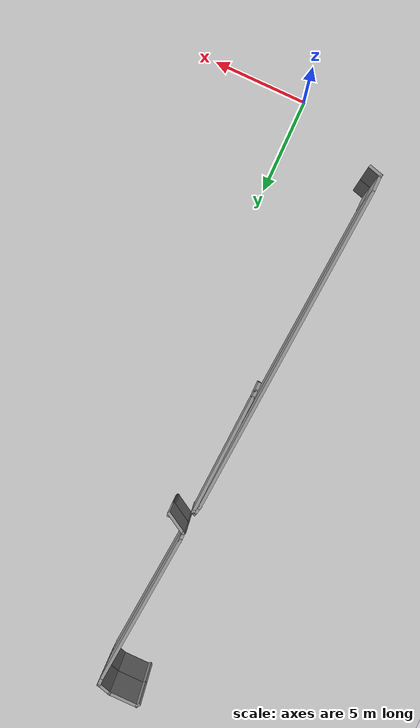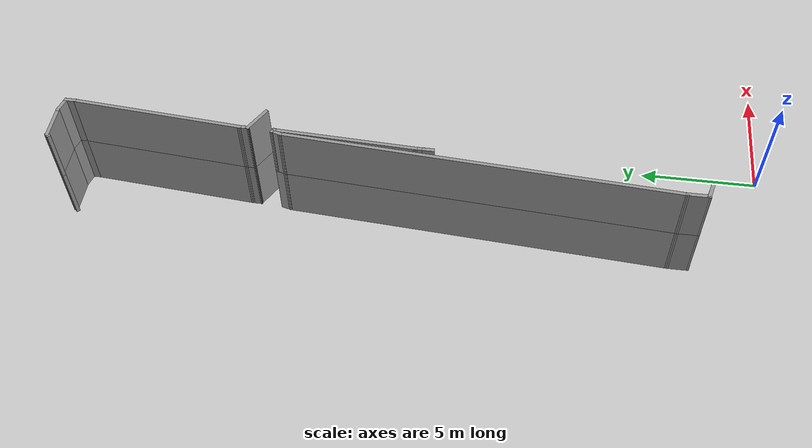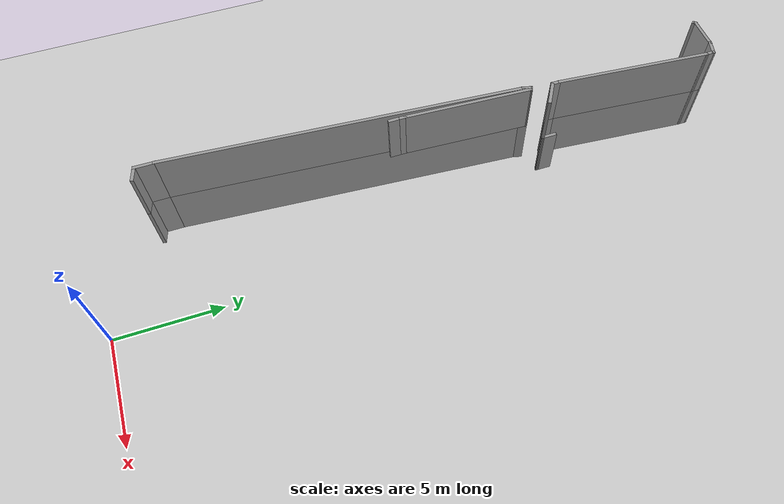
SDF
<sdf version="1.7">
 <world name="default">
  <model name="ground_plane">
   <static>1</static>
   <link name="link">
    <collision name="collision">
     <geometry><plane><normal>0 0 1</normal><size>100 100</size></plane></geometry>
     <surface>
      <contact><collide_bitmask>65535</collide_bitmask></contact>
      <friction><ode><mu>100</mu><mu2>50</mu2></ode></friction>
     </surface>
    </collision>
    <visual name="visual">
     <cast_shadows>0</cast_shadows>
     <geometry><plane><normal>0 0 1</normal><size>100 100</size></plane></geometry>
     <material>
      <script><uri>file://media/materials/scripts/gazebo.material</uri><name>Gazebo/Grey</name></script>
     </material>
    </visual>
   </link>
  </model>
  <model name="EnvDC01">
   <link name="Wall_112">
    <pose>-11.1086 9.30614 0 0 -0 2.87979</pose>
    <visual name="Wall_112_Visual">
     <pose>0 0 1.25 0 -0 0</pose>
     <geometry><box><size>0.75 0.15 2.5</size></box></geometry>
     <material>
      <script><uri>file://media/materials/scripts/gazebo.material</uri><name>Gazebo/Grey</name></script>
      <ambient>1 1 1 1</ambient>
      <shader type="pixel"/>
     </material>
     <meta><layer>0</layer></meta>
    </visual>
    <collision name="Wall_112_Collision">
     <pose>0 0 1.25 0 -0 0</pose>
     <geometry><box><size>0.75 0.15 2.5</size></box></geometry>
     <surface>
      <friction>
       <ode><mu>1</mu><mu2>1</mu2><fdir1>0 0 0</fdir1><slip1>0</slip1><slip2>0</slip2></ode>
       <torsional>
        <coefficient>1</coefficient>
        <patch_radius>0</patch_radius>
        <surface_radius>0</surface_radius>
        <use_patch_radius>1</use_patch_radius>
        <ode><slip>0</slip></ode>
       </torsional>
      </friction>
      <bounce><restitution_coefficient>0</restitution_coefficient><threshold>1e+06</threshold></bounce>
      <contact>
       <collide_without_contact>0</collide_without_contact>
       <collide_without_contact_bitmask>1</collide_without_contact_bitmask>
       <collide_bitmask>1</collide_bitmask>
       <ode>
        <soft_cfm>0</soft_cfm>
        <soft_erp>0.2</soft_erp>
        <kp>1e+13</kp>
        <kd>1</kd>
        <max_vel>0.01</max_vel>
        <min_depth>0</min_depth>
       </ode>
       <bullet>
        <split_impulse>1</split_impulse>
        <split_impulse_penetration_threshold>-0.01</split_impulse_penetration_threshold>
        <soft_cfm>0</soft_cfm>
        <soft_erp>0.2</soft_erp>
        <kp>1e+13</kp>
        <kd>1</kd>
       </bullet>
      </contact>
     </surface>
    </collision>
   </link>
   <link name="Wall_114">
    <pose>-10.2177 26.6696 0 0 0 -1.8326</pose>
    <visual name="Wall_114_Visual">
     <pose>0 0 1.25 0 -0 0</pose>
     <geometry><box><size>0.5 0.15 2.5</size></box></geometry>
     <material>
      <script><uri>file://media/materials/scripts/gazebo.material</uri><name>Gazebo/Grey</name></script>
      <ambient>1 1 1 1</ambient>
      <shader type="pixel"/>
     </material>
     <meta><layer>0</layer></meta>
    </visual>
    <collision name="Wall_114_Collision">
     <pose>0 0 1.25 0 -0 0</pose>
     <geometry><box><size>0.5 0.15 2.5</size></box></geometry>
     <surface>
      <friction>
       <ode><mu>1</mu><mu2>1</mu2><fdir1>0 0 0</fdir1><slip1>0</slip1><slip2>0</slip2></ode>
       <torsional>
        <coefficient>1</coefficient>
        <patch_radius>0</patch_radius>
        <surface_radius>0</surface_radius>
        <use_patch_radius>1</use_patch_radius>
        <ode><slip>0</slip></ode>
       </torsional>
      </friction>
      <bounce><restitution_coefficient>0</restitution_coefficient><threshold>1e+06</threshold></bounce>
      <contact>
       <collide_without_contact>0</collide_without_contact>
       <collide_without_contact_bitmask>1</collide_without_contact_bitmask>
       <collide_bitmask>1</collide_bitmask>
       <ode>
        <soft_cfm>0</soft_cfm>
        <soft_erp>0.2</soft_erp>
        <kp>1e+13</kp>
        <kd>1</kd>
        <max_vel>0.01</max_vel>
        <min_depth>0</min_depth>
       </ode>
       <bullet>
        <split_impulse>1</split_impulse>
        <split_impulse_penetration_threshold>-0.01</split_impulse_penetration_threshold>
        <soft_cfm>0</soft_cfm>
        <soft_erp>0.2</soft_erp>
        <kp>1e+13</kp>
        <kd>1</kd>
       </bullet>
      </contact>
     </surface>
    </collision>
   </link>
   <link name="Wall_115">
    <pose>-10.8307 18.3672 0 0 0 -1.64048</pose>
    <visual name="Wall_115_Visual">
     <pose>0 0 1.25 0 -0 0</pose>
     <geometry><box><size>16.4563 0.15 2.5</size></box></geometry>
     <material>
      <script><uri>file://media/materials/scripts/gazebo.material</uri><name>Gazebo/Grey</name></script>
      <ambient>1 1 1 1</ambient>
      <shader type="pixel"/>
     </material>
     <meta><layer>0</layer></meta>
    </visual>
    <collision name="Wall_115_Collision">
     <pose>0 0 1.25 0 -0 0</pose>
     <geometry><box><size>16.4563 0.15 2.5</size></box></geometry>
     <surface>
      <friction>
       <ode><mu>1</mu><mu2>1</mu2><fdir1>0 0 0</fdir1><slip1>0</slip1><slip2>0</slip2></ode>
       <torsional>
        <coefficient>1</coefficient>
        <patch_radius>0</patch_radius>
        <surface_radius>0</surface_radius>
        <use_patch_radius>1</use_patch_radius>
        <ode><slip>0</slip></ode>
       </torsional>
      </friction>
      <bounce><restitution_coefficient>0</restitution_coefficient><threshold>1e+06</threshold></bounce>
      <contact>
       <collide_without_contact>0</collide_without_contact>
       <collide_without_contact_bitmask>1</collide_without_contact_bitmask>
       <collide_bitmask>1</collide_bitmask>
       <ode>
        <soft_cfm>0</soft_cfm>
        <soft_erp>0.2</soft_erp>
        <kp>1e+13</kp>
        <kd>1</kd>
        <max_vel>0.01</max_vel>
        <min_depth>0</min_depth>
       </ode>
       <bullet>
        <split_impulse>1</split_impulse>
        <split_impulse_penetration_threshold>-0.01</split_impulse_penetration_threshold>
        <soft_cfm>0</soft_cfm>
        <soft_erp>0.2</soft_erp>
        <kp>1e+13</kp>
        <kd>1</kd>
       </bullet>
      </contact>
     </surface>
    </collision>
   </link>
   <link name="Wall_116">
    <pose>-11.3984 9.80879 0 0 0 -1.5708</pose>
    <visual name="Wall_116_Visual">
     <pose>0 0 1.25 0 -0 0</pose>
     <geometry><box><size>1 0.15 2.5</size></box></geometry>
     <material>
      <script><uri>file://media/materials/scripts/gazebo.material</uri><name>Gazebo/Grey</name></script>
      <ambient>1 1 1 1</ambient>
      <shader type="pixel"/>
     </material>
     <meta><layer>0</layer></meta>
    </visual>
    <collision name="Wall_116_Collision">
     <pose>0 0 1.25 0 -0 0</pose>
     <geometry><box><size>1 0.15 2.5</size></box></geometry>
     <surface>
      <friction>
       <ode><mu>1</mu><mu2>1</mu2><fdir1>0 0 0</fdir1><slip1>0</slip1><slip2>0</slip2></ode>
       <torsional>
        <coefficient>1</coefficient>
        <patch_radius>0</patch_radius>
        <surface_radius>0</surface_radius>
        <use_patch_radius>1</use_patch_radius>
        <ode><slip>0</slip></ode>
       </torsional>
      </friction>
      <bounce><restitution_coefficient>0</restitution_coefficient><threshold>1e+06</threshold></bounce>
      <contact>
       <collide_without_contact>0</collide_without_contact>
       <collide_without_contact_bitmask>1</collide_without_contact_bitmask>
       <collide_bitmask>1</collide_bitmask>
       <ode>
        <soft_cfm>0</soft_cfm>
        <soft_erp>0.2</soft_erp>
        <kp>1e+13</kp>
        <kd>1</kd>
        <max_vel>0.01</max_vel>
        <min_depth>0</min_depth>
       </ode>
       <bullet>
        <split_impulse>1</split_impulse>
        <split_impulse_penetration_threshold>-0.01</split_impulse_penetration_threshold>
        <soft_cfm>0</soft_cfm>
        <soft_erp>0.2</soft_erp>
        <kp>1e+13</kp>
        <kd>1</kd>
       </bullet>
      </contact>
     </surface>
    </collision>
   </link>
   <link name="Wall_118">
    <pose>-10.0854 28.0428 0 0 -0 1.5708</pose>
    <visual name="Wall_118_Visual">
     <pose>0 0 1.25 0 -0 0</pose>
     <geometry><box><size>0.5 0.15 2.5</size></box></geometry>
     <material>
      <script><uri>file://media/materials/scripts/gazebo.material</uri><name>Gazebo/Grey</name></script>
      <ambient>1 1 1 1</ambient>
      <shader type="pixel"/>
     </material>
     <meta><layer>0</layer></meta>
    </visual>
    <collision name="Wall_118_Collision">
     <pose>0 0 1.25 0 -0 0</pose>
     <geometry><box><size>0.5 0.15 2.5</size></box></geometry>
     <surface>
      <friction>
       <ode><mu>1</mu><mu2>1</mu2><fdir1>0 0 0</fdir1><slip1>0</slip1><slip2>0</slip2></ode>
       <torsional>
        <coefficient>1</coefficient>
        <patch_radius>0</patch_radius>
        <surface_radius>0</surface_radius>
        <use_patch_radius>1</use_patch_radius>
        <ode><slip>0</slip></ode>
       </torsional>
      </friction>
      <bounce><restitution_coefficient>0</restitution_coefficient><threshold>1e+06</threshold></bounce>
      <contact>
       <collide_without_contact>0</collide_without_contact>
       <collide_without_contact_bitmask>1</collide_without_contact_bitmask>
       <collide_bitmask>1</collide_bitmask>
       <ode>
        <soft_cfm>0</soft_cfm>
        <soft_erp>0.2</soft_erp>
        <kp>1e+13</kp>
        <kd>1</kd>
        <max_vel>0.01</max_vel>
        <min_depth>0</min_depth>
       </ode>
       <bullet>
        <split_impulse>1</split_impulse>
        <split_impulse_penetration_threshold>-0.01</split_impulse_penetration_threshold>
        <soft_cfm>0</soft_cfm>
        <soft_erp>0.2</soft_erp>
        <kp>1e+13</kp>
        <kd>1</kd>
       </bullet>
      </contact>
     </surface>
    </collision>
   </link>
   <link name="Wall_119">
    <pose>-9.78492 31.7757 0 0 -0 1.48653</pose>
    <visual name="Wall_119_Visual">
     <pose>0 0 1.25 0 -0 0</pose>
     <geometry><box><size>7.29114 0.15 2.5</size></box></geometry>
     <material>
      <script><uri>file://media/materials/scripts/gazebo.material</uri><name>Gazebo/Grey</name></script>
      <ambient>1 1 1 1</ambient>
      <shader type="pixel"/>
     </material>
     <meta><layer>0</layer></meta>
    </visual>
    <collision name="Wall_119_Collision">
     <pose>0 0 1.25 0 -0 0</pose>
     <geometry><box><size>7.29114 0.15 2.5</size></box></geometry>
     <surface>
      <friction>
       <ode><mu>1</mu><mu2>1</mu2><fdir1>0 0 0</fdir1><slip1>0</slip1><slip2>0</slip2></ode>
       <torsional>
        <coefficient>1</coefficient>
        <patch_radius>0</patch_radius>
        <surface_radius>0</surface_radius>
        <use_patch_radius>1</use_patch_radius>
        <ode><slip>0</slip></ode>
       </torsional>
      </friction>
      <bounce><restitution_coefficient>0</restitution_coefficient><threshold>1e+06</threshold></bounce>
      <contact>
       <collide_without_contact>0</collide_without_contact>
       <collide_without_contact_bitmask>1</collide_without_contact_bitmask>
       <collide_bitmask>1</collide_bitmask>
       <ode>
        <soft_cfm>0</soft_cfm>
        <soft_erp>0.2</soft_erp>
        <kp>1e+13</kp>
        <kd>1</kd>
        <max_vel>0.01</max_vel>
        <min_depth>0</min_depth>
       </ode>
       <bullet>
        <split_impulse>1</split_impulse>
        <split_impulse_penetration_threshold>-0.01</split_impulse_penetration_threshold>
        <soft_cfm>0</soft_cfm>
        <soft_erp>0.2</soft_erp>
        <kp>1e+13</kp>
        <kd>1</kd>
       </bullet>
      </contact>
     </surface>
    </collision>
   </link>
   <link name="Wall_120">
    <pose>-9.4844 35.5086 0 0 -0 1.5708</pose>
    <visual name="Wall_120_Visual">
     <pose>0 0 1.25 0 -0 0</pose>
     <geometry><box><size>0.5 0.15 2.5</size></box></geometry>
     <material>
      <script><uri>file://media/materials/scripts/gazebo.material</uri><name>Gazebo/Grey</name></script>
      <ambient>1 1 1 1</ambient>
      <shader type="pixel"/>
     </material>
     <meta><layer>0</layer></meta>
    </visual>
    <collision name="Wall_120_Collision">
     <pose>0 0 1.25 0 -0 0</pose>
     <geometry><box><size>0.5 0.15 2.5</size></box></geometry>
     <surface>
      <friction>
       <ode><mu>1</mu><mu2>1</mu2><fdir1>0 0 0</fdir1><slip1>0</slip1><slip2>0</slip2></ode>
       <torsional>
        <coefficient>1</coefficient>
        <patch_radius>0</patch_radius>
        <surface_radius>0</surface_radius>
        <use_patch_radius>1</use_patch_radius>
        <ode><slip>0</slip></ode>
       </torsional>
      </friction>
      <bounce><restitution_coefficient>0</restitution_coefficient><threshold>1e+06</threshold></bounce>
      <contact>
       <collide_without_contact>0</collide_without_contact>
       <collide_without_contact_bitmask>1</collide_without_contact_bitmask>
       <collide_bitmask>1</collide_bitmask>
       <ode>
        <soft_cfm>0</soft_cfm>
        <soft_erp>0.2</soft_erp>
        <kp>1e+13</kp>
        <kd>1</kd>
        <max_vel>0.01</max_vel>
        <min_depth>0</min_depth>
       </ode>
       <bullet>
        <split_impulse>1</split_impulse>
        <split_impulse_penetration_threshold>-0.01</split_impulse_penetration_threshold>
        <soft_cfm>0</soft_cfm>
        <soft_erp>0.2</soft_erp>
        <kp>1e+13</kp>
        <kd>1</kd>
       </bullet>
      </contact>
     </surface>
    </collision>
   </link>
   <link name="Wall_122">
    <pose>-9.77418 35.7612 0 0 -0 2.87979</pose>
    <visual name="Wall_122_Visual">
     <pose>0 0 1.25 0 -0 0</pose>
     <geometry><box><size>0.75 0.15 2.5</size></box></geometry>
     <material>
      <script><uri>file://media/materials/scripts/gazebo.material</uri><name>Gazebo/Grey</name></script>
      <ambient>1 1 1 1</ambient>
      <shader type="pixel"/>
     </material>
     <meta><layer>0</layer></meta>
    </visual>
    <collision name="Wall_122_Collision">
     <pose>0 0 1.25 0 -0 0</pose>
     <geometry><box><size>0.75 0.15 2.5</size></box></geometry>
     <surface>
      <friction>
       <ode><mu>1</mu><mu2>1</mu2><fdir1>0 0 0</fdir1><slip1>0</slip1><slip2>0</slip2></ode>
       <torsional>
        <coefficient>1</coefficient>
        <patch_radius>0</patch_radius>
        <surface_radius>0</surface_radius>
        <use_patch_radius>1</use_patch_radius>
        <ode><slip>0</slip></ode>
       </torsional>
      </friction>
      <bounce><restitution_coefficient>0</restitution_coefficient><threshold>1e+06</threshold></bounce>
      <contact>
       <collide_without_contact>0</collide_without_contact>
       <collide_without_contact_bitmask>1</collide_without_contact_bitmask>
       <collide_bitmask>1</collide_bitmask>
       <ode>
        <soft_cfm>0</soft_cfm>
        <soft_erp>0.2</soft_erp>
        <kp>1e+13</kp>
        <kd>1</kd>
        <max_vel>0.01</max_vel>
        <min_depth>0</min_depth>
       </ode>
       <bullet>
        <split_impulse>1</split_impulse>
        <split_impulse_penetration_threshold>-0.01</split_impulse_penetration_threshold>
        <soft_cfm>0</soft_cfm>
        <soft_erp>0.2</soft_erp>
        <kp>1e+13</kp>
        <kd>1</kd>
       </bullet>
      </contact>
     </surface>
    </collision>
   </link>
   <link name="Wall_123">
    <pose>-10.739 35.8389 0 0 -0 3.14159</pose>
    <visual name="Wall_123_Visual">
     <pose>0 0 1.25 0 -0 0</pose>
     <geometry><box><size>1.5 0.15 2.5</size></box></geometry>
     <material>
      <script><uri>file://media/materials/scripts/gazebo.material</uri><name>Gazebo/Grey</name></script>
      <ambient>1 1 1 1</ambient>
      <shader type="pixel"/>
     </material>
     <meta><layer>0</layer></meta>
    </visual>
    <collision name="Wall_123_Collision">
     <pose>0 0 1.25 0 -0 0</pose>
     <geometry><box><size>1.5 0.15 2.5</size></box></geometry>
     <surface>
      <friction>
       <ode><mu>1</mu><mu2>1</mu2><fdir1>0 0 0</fdir1><slip1>0</slip1><slip2>0</slip2></ode>
       <torsional>
        <coefficient>1</coefficient>
        <patch_radius>0</patch_radius>
        <surface_radius>0</surface_radius>
        <use_patch_radius>1</use_patch_radius>
        <ode><slip>0</slip></ode>
       </torsional>
      </friction>
      <bounce><restitution_coefficient>0</restitution_coefficient><threshold>1e+06</threshold></bounce>
      <contact>
       <collide_without_contact>0</collide_without_contact>
       <collide_without_contact_bitmask>1</collide_without_contact_bitmask>
       <collide_bitmask>1</collide_bitmask>
       <ode>
        <soft_cfm>0</soft_cfm>
        <soft_erp>0.2</soft_erp>
        <kp>1e+13</kp>
        <kd>1</kd>
        <max_vel>0.01</max_vel>
        <min_depth>0</min_depth>
       </ode>
       <bullet>
        <split_impulse>1</split_impulse>
        <split_impulse_penetration_threshold>-0.01</split_impulse_penetration_threshold>
        <soft_cfm>0</soft_cfm>
        <soft_erp>0.2</soft_erp>
        <kp>1e+13</kp>
        <kd>1</kd>
       </bullet>
      </contact>
     </surface>
    </collision>
   </link>
   <link name="Wall_124">
    <pose>-11.4493 35.8035 0 0 0 -2.35619</pose>
    <visual name="Wall_124_Visual">
     <pose>0 0 1.25 0 -0 0</pose>
     <geometry><box><size>0.25 0.15 2.5</size></box></geometry>
     <material>
      <script><uri>file://media/materials/scripts/gazebo.material</uri><name>Gazebo/Grey</name></script>
      <ambient>1 1 1 1</ambient>
      <shader type="pixel"/>
     </material>
     <meta><layer>0</layer></meta>
    </visual>
    <collision name="Wall_124_Collision">
     <pose>0 0 1.25 0 -0 0</pose>
     <geometry><box><size>0.25 0.15 2.5</size></box></geometry>
     <surface>
      <friction>
       <ode><mu>1</mu><mu2>1</mu2><fdir1>0 0 0</fdir1><slip1>0</slip1><slip2>0</slip2></ode>
       <torsional>
        <coefficient>1</coefficient>
        <patch_radius>0</patch_radius>
        <surface_radius>0</surface_radius>
        <use_patch_radius>1</use_patch_radius>
        <ode><slip>0</slip></ode>
       </torsional>
      </friction>
      <bounce><restitution_coefficient>0</restitution_coefficient><threshold>1e+06</threshold></bounce>
      <contact>
       <collide_without_contact>0</collide_without_contact>
       <collide_without_contact_bitmask>1</collide_without_contact_bitmask>
       <collide_bitmask>1</collide_bitmask>
       <ode>
        <soft_cfm>0</soft_cfm>
        <soft_erp>0.2</soft_erp>
        <kp>1e+13</kp>
        <kd>1</kd>
        <max_vel>0.01</max_vel>
        <min_depth>0</min_depth>
       </ode>
       <bullet>
        <split_impulse>1</split_impulse>
        <split_impulse_penetration_threshold>-0.01</split_impulse_penetration_threshold>
        <soft_cfm>0</soft_cfm>
        <soft_erp>0.2</soft_erp>
        <kp>1e+13</kp>
        <kd>1</kd>
       </bullet>
      </contact>
     </surface>
    </collision>
   </link>
   <link name="Wall_254">
    <pose>-9.60913 27.5928 0 0 0 -0.523599</pose>
    <visual name="Wall_254_Visual">
     <pose>0 0 1.25 0 -0 0</pose>
     <geometry><box><size>1.25 0.15 2.5</size></box></geometry>
     <material>
      <script><uri>file://media/materials/scripts/gazebo.material</uri><name>Gazebo/Grey</name></script>
      <ambient>1 1 1 1</ambient>
      <shader type="pixel"/>
     </material>
     <meta><layer>0</layer></meta>
    </visual>
    <collision name="Wall_254_Collision">
     <pose>0 0 1.25 0 -0 0</pose>
     <geometry><box><size>1.25 0.15 2.5</size></box></geometry>
     <surface>
      <friction>
       <ode><mu>1</mu><mu2>1</mu2><fdir1>0 0 0</fdir1><slip1>0</slip1><slip2>0</slip2></ode>
       <torsional>
        <coefficient>1</coefficient>
        <patch_radius>0</patch_radius>
        <surface_radius>0</surface_radius>
        <use_patch_radius>1</use_patch_radius>
        <ode><slip>0</slip></ode>
       </torsional>
      </friction>
      <bounce><restitution_coefficient>0</restitution_coefficient><threshold>1e+06</threshold></bounce>
      <contact>
       <collide_without_contact>0</collide_without_contact>
       <collide_without_contact_bitmask>1</collide_without_contact_bitmask>
       <collide_bitmask>1</collide_bitmask>
       <ode>
        <soft_cfm>0</soft_cfm>
        <soft_erp>0.2</soft_erp>
        <kp>1e+13</kp>
        <kd>1</kd>
        <max_vel>0.01</max_vel>
        <min_depth>0</min_depth>
       </ode>
       <bullet>
        <split_impulse>1</split_impulse>
        <split_impulse_penetration_threshold>-0.01</split_impulse_penetration_threshold>
        <soft_cfm>0</soft_cfm>
        <soft_erp>0.2</soft_erp>
        <kp>1e+13</kp>
        <kd>1</kd>
       </bullet>
      </contact>
     </surface>
    </collision>
   </link>
   <link name="Wall_255">
    <pose>-9.13281 27.6178 0 0 -0 1.5708</pose>
    <visual name="Wall_255_Visual">
     <pose>0 0 1.25 0 -0 0</pose>
     <geometry><box><size>0.75 0.15 2.5</size></box></geometry>
     <material>
      <script><uri>file://media/materials/scripts/gazebo.material</uri><name>Gazebo/Grey</name></script>
      <ambient>1 1 1 1</ambient>
      <shader type="pixel"/>
     </material>
     <meta><layer>0</layer></meta>
    </visual>
    <collision name="Wall_255_Collision">
     <pose>0 0 1.25 0 -0 0</pose>
     <geometry><box><size>0.75 0.15 2.5</size></box></geometry>
     <surface>
      <friction>
       <ode><mu>1</mu><mu2>1</mu2><fdir1>0 0 0</fdir1><slip1>0</slip1><slip2>0</slip2></ode>
       <torsional>
        <coefficient>1</coefficient>
        <patch_radius>0</patch_radius>
        <surface_radius>0</surface_radius>
        <use_patch_radius>1</use_patch_radius>
        <ode><slip>0</slip></ode>
       </torsional>
      </friction>
      <bounce><restitution_coefficient>0</restitution_coefficient><threshold>1e+06</threshold></bounce>
      <contact>
       <collide_without_contact>0</collide_without_contact>
       <collide_without_contact_bitmask>1</collide_without_contact_bitmask>
       <collide_bitmask>1</collide_bitmask>
       <ode>
        <soft_cfm>0</soft_cfm>
        <soft_erp>0.2</soft_erp>
        <kp>1e+13</kp>
        <kd>1</kd>
        <max_vel>0.01</max_vel>
        <min_depth>0</min_depth>
       </ode>
       <bullet>
        <split_impulse>1</split_impulse>
        <split_impulse_penetration_threshold>-0.01</split_impulse_penetration_threshold>
        <soft_cfm>0</soft_cfm>
        <soft_erp>0.2</soft_erp>
        <kp>1e+13</kp>
        <kd>1</kd>
       </bullet>
      </contact>
     </surface>
    </collision>
   </link>
   <link name="Wall_317">
    <pose>-11.1086 9.30614 2.5 0 -0 2.87979</pose>
    <visual name="Wall_317_Visual">
     <pose>0 0 1.25 0 -0 0</pose>
     <geometry><box><size>0.75 0.15 2.5</size></box></geometry>
     <material>
      <script><uri>file://media/materials/scripts/gazebo.material</uri><name>Gazebo/Grey</name></script>
      <ambient>1 1 1 1</ambient>
      <shader type="pixel"/>
     </material>
     <meta><layer>1</layer></meta>
    </visual>
    <collision name="Wall_317_Collision">
     <pose>0 0 1.25 0 -0 0</pose>
     <geometry><box><size>0.75 0.15 2.5</size></box></geometry>
     <surface>
      <friction>
       <ode><mu>1</mu><mu2>1</mu2><fdir1>0 0 0</fdir1><slip1>0</slip1><slip2>0</slip2></ode>
       <torsional>
        <coefficient>1</coefficient>
        <patch_radius>0</patch_radius>
        <surface_radius>0</surface_radius>
        <use_patch_radius>1</use_patch_radius>
        <ode><slip>0</slip></ode>
       </torsional>
      </friction>
      <bounce><restitution_coefficient>0</restitution_coefficient><threshold>1e+06</threshold></bounce>
      <contact>
       <collide_without_contact>0</collide_without_contact>
       <collide_without_contact_bitmask>1</collide_without_contact_bitmask>
       <collide_bitmask>1</collide_bitmask>
       <ode>
        <soft_cfm>0</soft_cfm>
        <soft_erp>0.2</soft_erp>
        <kp>1e+13</kp>
        <kd>1</kd>
        <max_vel>0.01</max_vel>
        <min_depth>0</min_depth>
       </ode>
       <bullet>
        <split_impulse>1</split_impulse>
        <split_impulse_penetration_threshold>-0.01</split_impulse_penetration_threshold>
        <soft_cfm>0</soft_cfm>
        <soft_erp>0.2</soft_erp>
        <kp>1e+13</kp>
        <kd>1</kd>
       </bullet>
      </contact>
     </surface>
    </collision>
   </link>
   <link name="Wall_318">
    <pose>-10.2177 26.6696 2.5 0 0 -1.8326</pose>
    <visual name="Wall_318_Visual">
     <pose>0 0 1.25 0 -0 0</pose>
     <geometry><box><size>0.5 0.15 2.5</size></box></geometry>
     <material>
      <script><uri>file://media/materials/scripts/gazebo.material</uri><name>Gazebo/Grey</name></script>
      <ambient>1 1 1 1</ambient>
      <shader type="pixel"/>
     </material>
     <meta><layer>1</layer></meta>
    </visual>
    <collision name="Wall_318_Collision">
     <pose>0 0 1.25 0 -0 0</pose>
     <geometry><box><size>0.5 0.15 2.5</size></box></geometry>
     <surface>
      <friction>
       <ode><mu>1</mu><mu2>1</mu2><fdir1>0 0 0</fdir1><slip1>0</slip1><slip2>0</slip2></ode>
       <torsional>
        <coefficient>1</coefficient>
        <patch_radius>0</patch_radius>
        <surface_radius>0</surface_radius>
        <use_patch_radius>1</use_patch_radius>
        <ode><slip>0</slip></ode>
       </torsional>
      </friction>
      <bounce><restitution_coefficient>0</restitution_coefficient><threshold>1e+06</threshold></bounce>
      <contact>
       <collide_without_contact>0</collide_without_contact>
       <collide_without_contact_bitmask>1</collide_without_contact_bitmask>
       <collide_bitmask>1</collide_bitmask>
       <ode>
        <soft_cfm>0</soft_cfm>
        <soft_erp>0.2</soft_erp>
        <kp>1e+13</kp>
        <kd>1</kd>
        <max_vel>0.01</max_vel>
        <min_depth>0</min_depth>
       </ode>
       <bullet>
        <split_impulse>1</split_impulse>
        <split_impulse_penetration_threshold>-0.01</split_impulse_penetration_threshold>
        <soft_cfm>0</soft_cfm>
        <soft_erp>0.2</soft_erp>
        <kp>1e+13</kp>
        <kd>1</kd>
       </bullet>
      </contact>
     </surface>
    </collision>
   </link>
   <link name="Wall_319">
    <pose>-10.8307 18.3672 2.5 0 0 -1.64048</pose>
    <visual name="Wall_319_Visual">
     <pose>0 0 1.25 0 -0 0</pose>
     <geometry><box><size>16.4563 0.15 2.5</size></box></geometry>
     <material>
      <script><uri>file://media/materials/scripts/gazebo.material</uri><name>Gazebo/Grey</name></script>
      <ambient>1 1 1 1</ambient>
      <shader type="pixel"/>
     </material>
     <meta><layer>1</layer></meta>
    </visual>
    <collision name="Wall_319_Collision">
     <pose>0 0 1.25 0 -0 0</pose>
     <geometry><box><size>16.4563 0.15 2.5</size></box></geometry>
     <surface>
      <friction>
       <ode><mu>1</mu><mu2>1</mu2><fdir1>0 0 0</fdir1><slip1>0</slip1><slip2>0</slip2></ode>
       <torsional>
        <coefficient>1</coefficient>
        <patch_radius>0</patch_radius>
        <surface_radius>0</surface_radius>
        <use_patch_radius>1</use_patch_radius>
        <ode><slip>0</slip></ode>
       </torsional>
      </friction>
      <bounce><restitution_coefficient>0</restitution_coefficient><threshold>1e+06</threshold></bounce>
      <contact>
       <collide_without_contact>0</collide_without_contact>
       <collide_without_contact_bitmask>1</collide_without_contact_bitmask>
       <collide_bitmask>1</collide_bitmask>
       <ode>
        <soft_cfm>0</soft_cfm>
        <soft_erp>0.2</soft_erp>
        <kp>1e+13</kp>
        <kd>1</kd>
        <max_vel>0.01</max_vel>
        <min_depth>0</min_depth>
       </ode>
       <bullet>
        <split_impulse>1</split_impulse>
        <split_impulse_penetration_threshold>-0.01</split_impulse_penetration_threshold>
        <soft_cfm>0</soft_cfm>
        <soft_erp>0.2</soft_erp>
        <kp>1e+13</kp>
        <kd>1</kd>
       </bullet>
      </contact>
     </surface>
    </collision>
   </link>
   <link name="Wall_320">
    <pose>-11.3984 9.80879 2.5 0 0 -1.5708</pose>
    <visual name="Wall_320_Visual">
     <pose>0 0 1.25 0 -0 0</pose>
     <geometry><box><size>1 0.15 2.5</size></box></geometry>
     <material>
      <script><uri>file://media/materials/scripts/gazebo.material</uri><name>Gazebo/Grey</name></script>
      <ambient>1 1 1 1</ambient>
      <shader type="pixel"/>
     </material>
     <meta><layer>1</layer></meta>
    </visual>
    <collision name="Wall_320_Collision">
     <pose>0 0 1.25 0 -0 0</pose>
     <geometry><box><size>1 0.15 2.5</size></box></geometry>
     <surface>
      <friction>
       <ode><mu>1</mu><mu2>1</mu2><fdir1>0 0 0</fdir1><slip1>0</slip1><slip2>0</slip2></ode>
       <torsional>
        <coefficient>1</coefficient>
        <patch_radius>0</patch_radius>
        <surface_radius>0</surface_radius>
        <use_patch_radius>1</use_patch_radius>
        <ode><slip>0</slip></ode>
       </torsional>
      </friction>
      <bounce><restitution_coefficient>0</restitution_coefficient><threshold>1e+06</threshold></bounce>
      <contact>
       <collide_without_contact>0</collide_without_contact>
       <collide_without_contact_bitmask>1</collide_without_contact_bitmask>
       <collide_bitmask>1</collide_bitmask>
       <ode>
        <soft_cfm>0</soft_cfm>
        <soft_erp>0.2</soft_erp>
        <kp>1e+13</kp>
        <kd>1</kd>
        <max_vel>0.01</max_vel>
        <min_depth>0</min_depth>
       </ode>
       <bullet>
        <split_impulse>1</split_impulse>
        <split_impulse_penetration_threshold>-0.01</split_impulse_penetration_threshold>
        <soft_cfm>0</soft_cfm>
        <soft_erp>0.2</soft_erp>
        <kp>1e+13</kp>
        <kd>1</kd>
       </bullet>
      </contact>
     </surface>
    </collision>
   </link>
   <link name="Wall_321">
    <pose>-10.0854 28.0428 2.5 0 -0 1.5708</pose>
    <visual name="Wall_321_Visual">
     <pose>0 0 1.25 0 -0 0</pose>
     <geometry><box><size>0.5 0.15 2.5</size></box></geometry>
     <material>
      <script><uri>file://media/materials/scripts/gazebo.material</uri><name>Gazebo/Grey</name></script>
      <ambient>1 1 1 1</ambient>
      <shader type="pixel"/>
     </material>
     <meta><layer>1</layer></meta>
    </visual>
    <collision name="Wall_321_Collision">
     <pose>0 0 1.25 0 -0 0</pose>
     <geometry><box><size>0.5 0.15 2.5</size></box></geometry>
     <surface>
      <friction>
       <ode><mu>1</mu><mu2>1</mu2><fdir1>0 0 0</fdir1><slip1>0</slip1><slip2>0</slip2></ode>
       <torsional>
        <coefficient>1</coefficient>
        <patch_radius>0</patch_radius>
        <surface_radius>0</surface_radius>
        <use_patch_radius>1</use_patch_radius>
        <ode><slip>0</slip></ode>
       </torsional>
      </friction>
      <bounce><restitution_coefficient>0</restitution_coefficient><threshold>1e+06</threshold></bounce>
      <contact>
       <collide_without_contact>0</collide_without_contact>
       <collide_without_contact_bitmask>1</collide_without_contact_bitmask>
       <collide_bitmask>1</collide_bitmask>
       <ode>
        <soft_cfm>0</soft_cfm>
        <soft_erp>0.2</soft_erp>
        <kp>1e+13</kp>
        <kd>1</kd>
        <max_vel>0.01</max_vel>
        <min_depth>0</min_depth>
       </ode>
       <bullet>
        <split_impulse>1</split_impulse>
        <split_impulse_penetration_threshold>-0.01</split_impulse_penetration_threshold>
        <soft_cfm>0</soft_cfm>
        <soft_erp>0.2</soft_erp>
        <kp>1e+13</kp>
        <kd>1</kd>
       </bullet>
      </contact>
     </surface>
    </collision>
   </link>
   <link name="Wall_322">
    <pose>-9.78492 31.7757 2.5 0 -0 1.48653</pose>
    <visual name="Wall_322_Visual">
     <pose>0 0 1.25 0 -0 0</pose>
     <geometry><box><size>7.29114 0.15 2.5</size></box></geometry>
     <material>
      <script><uri>file://media/materials/scripts/gazebo.material</uri><name>Gazebo/Grey</name></script>
      <ambient>1 1 1 1</ambient>
      <shader type="pixel"/>
     </material>
     <meta><layer>1</layer></meta>
    </visual>
    <collision name="Wall_322_Collision">
     <pose>0 0 1.25 0 -0 0</pose>
     <geometry><box><size>7.29114 0.15 2.5</size></box></geometry>
     <surface>
      <friction>
       <ode><mu>1</mu><mu2>1</mu2><fdir1>0 0 0</fdir1><slip1>0</slip1><slip2>0</slip2></ode>
       <torsional>
        <coefficient>1</coefficient>
        <patch_radius>0</patch_radius>
        <surface_radius>0</surface_radius>
        <use_patch_radius>1</use_patch_radius>
        <ode><slip>0</slip></ode>
       </torsional>
      </friction>
      <bounce><restitution_coefficient>0</restitution_coefficient><threshold>1e+06</threshold></bounce>
      <contact>
       <collide_without_contact>0</collide_without_contact>
       <collide_without_contact_bitmask>1</collide_without_contact_bitmask>
       <collide_bitmask>1</collide_bitmask>
       <ode>
        <soft_cfm>0</soft_cfm>
        <soft_erp>0.2</soft_erp>
        <kp>1e+13</kp>
        <kd>1</kd>
        <max_vel>0.01</max_vel>
        <min_depth>0</min_depth>
       </ode>
       <bullet>
        <split_impulse>1</split_impulse>
        <split_impulse_penetration_threshold>-0.01</split_impulse_penetration_threshold>
        <soft_cfm>0</soft_cfm>
        <soft_erp>0.2</soft_erp>
        <kp>1e+13</kp>
        <kd>1</kd>
       </bullet>
      </contact>
     </surface>
    </collision>
   </link>
   <link name="Wall_323">
    <pose>-9.4844 35.5086 2.5 0 -0 1.5708</pose>
    <visual name="Wall_323_Visual">
     <pose>0 0 1.25 0 -0 0</pose>
     <geometry><box><size>0.5 0.15 2.5</size></box></geometry>
     <material>
      <script><uri>file://media/materials/scripts/gazebo.material</uri><name>Gazebo/Grey</name></script>
      <ambient>1 1 1 1</ambient>
      <shader type="pixel"/>
     </material>
     <meta><layer>1</layer></meta>
    </visual>
    <collision name="Wall_323_Collision">
     <pose>0 0 1.25 0 -0 0</pose>
     <geometry><box><size>0.5 0.15 2.5</size></box></geometry>
     <surface>
      <friction>
       <ode><mu>1</mu><mu2>1</mu2><fdir1>0 0 0</fdir1><slip1>0</slip1><slip2>0</slip2></ode>
       <torsional>
        <coefficient>1</coefficient>
        <patch_radius>0</patch_radius>
        <surface_radius>0</surface_radius>
        <use_patch_radius>1</use_patch_radius>
        <ode><slip>0</slip></ode>
       </torsional>
      </friction>
      <bounce><restitution_coefficient>0</restitution_coefficient><threshold>1e+06</threshold></bounce>
      <contact>
       <collide_without_contact>0</collide_without_contact>
       <collide_without_contact_bitmask>1</collide_without_contact_bitmask>
       <collide_bitmask>1</collide_bitmask>
       <ode>
        <soft_cfm>0</soft_cfm>
        <soft_erp>0.2</soft_erp>
        <kp>1e+13</kp>
        <kd>1</kd>
        <max_vel>0.01</max_vel>
        <min_depth>0</min_depth>
       </ode>
       <bullet>
        <split_impulse>1</split_impulse>
        <split_impulse_penetration_threshold>-0.01</split_impulse_penetration_threshold>
        <soft_cfm>0</soft_cfm>
        <soft_erp>0.2</soft_erp>
        <kp>1e+13</kp>
        <kd>1</kd>
       </bullet>
      </contact>
     </surface>
    </collision>
   </link>
   <link name="Wall_324">
    <pose>-9.77418 35.7612 2.5 0 -0 2.87979</pose>
    <visual name="Wall_324_Visual">
     <pose>0 0 1.25 0 -0 0</pose>
     <geometry><box><size>0.75 0.15 2.5</size></box></geometry>
     <material>
      <script><uri>file://media/materials/scripts/gazebo.material</uri><name>Gazebo/Grey</name></script>
      <ambient>1 1 1 1</ambient>
      <shader type="pixel"/>
     </material>
     <meta><layer>1</layer></meta>
    </visual>
    <collision name="Wall_324_Collision">
     <pose>0 0 1.25 0 -0 0</pose>
     <geometry><box><size>0.75 0.15 2.5</size></box></geometry>
     <surface>
      <friction>
       <ode><mu>1</mu><mu2>1</mu2><fdir1>0 0 0</fdir1><slip1>0</slip1><slip2>0</slip2></ode>
       <torsional>
        <coefficient>1</coefficient>
        <patch_radius>0</patch_radius>
        <surface_radius>0</surface_radius>
        <use_patch_radius>1</use_patch_radius>
        <ode><slip>0</slip></ode>
       </torsional>
      </friction>
      <bounce><restitution_coefficient>0</restitution_coefficient><threshold>1e+06</threshold></bounce>
      <contact>
       <collide_without_contact>0</collide_without_contact>
       <collide_without_contact_bitmask>1</collide_without_contact_bitmask>
       <collide_bitmask>1</collide_bitmask>
       <ode>
        <soft_cfm>0</soft_cfm>
        <soft_erp>0.2</soft_erp>
        <kp>1e+13</kp>
        <kd>1</kd>
        <max_vel>0.01</max_vel>
        <min_depth>0</min_depth>
       </ode>
       <bullet>
        <split_impulse>1</split_impulse>
        <split_impulse_penetration_threshold>-0.01</split_impulse_penetration_threshold>
        <soft_cfm>0</soft_cfm>
        <soft_erp>0.2</soft_erp>
        <kp>1e+13</kp>
        <kd>1</kd>
       </bullet>
      </contact>
     </surface>
    </collision>
   </link>
   <link name="Wall_325">
    <pose>-10.739 35.8389 2.5 0 -0 3.14159</pose>
    <visual name="Wall_325_Visual">
     <pose>0 0 1.25 0 -0 0</pose>
     <geometry><box><size>1.5 0.15 2.5</size></box></geometry>
     <material>
      <script><uri>file://media/materials/scripts/gazebo.material</uri><name>Gazebo/Grey</name></script>
      <ambient>1 1 1 1</ambient>
      <shader type="pixel"/>
     </material>
     <meta><layer>1</layer></meta>
    </visual>
    <collision name="Wall_325_Collision">
     <pose>0 0 1.25 0 -0 0</pose>
     <geometry><box><size>1.5 0.15 2.5</size></box></geometry>
     <surface>
      <friction>
       <ode><mu>1</mu><mu2>1</mu2><fdir1>0 0 0</fdir1><slip1>0</slip1><slip2>0</slip2></ode>
       <torsional>
        <coefficient>1</coefficient>
        <patch_radius>0</patch_radius>
        <surface_radius>0</surface_radius>
        <use_patch_radius>1</use_patch_radius>
        <ode><slip>0</slip></ode>
       </torsional>
      </friction>
      <bounce><restitution_coefficient>0</restitution_coefficient><threshold>1e+06</threshold></bounce>
      <contact>
       <collide_without_contact>0</collide_without_contact>
       <collide_without_contact_bitmask>1</collide_without_contact_bitmask>
       <collide_bitmask>1</collide_bitmask>
       <ode>
        <soft_cfm>0</soft_cfm>
        <soft_erp>0.2</soft_erp>
        <kp>1e+13</kp>
        <kd>1</kd>
        <max_vel>0.01</max_vel>
        <min_depth>0</min_depth>
       </ode>
       <bullet>
        <split_impulse>1</split_impulse>
        <split_impulse_penetration_threshold>-0.01</split_impulse_penetration_threshold>
        <soft_cfm>0</soft_cfm>
        <soft_erp>0.2</soft_erp>
        <kp>1e+13</kp>
        <kd>1</kd>
       </bullet>
      </contact>
     </surface>
    </collision>
   </link>
   <link name="Wall_326">
    <pose>-11.4493 35.8035 2.5 0 0 -2.35619</pose>
    <visual name="Wall_326_Visual">
     <pose>0 0 1.25 0 -0 0</pose>
     <geometry><box><size>0.25 0.15 2.5</size></box></geometry>
     <material>
      <script><uri>file://media/materials/scripts/gazebo.material</uri><name>Gazebo/Grey</name></script>
      <ambient>1 1 1 1</ambient>
      <shader type="pixel"/>
     </material>
     <meta><layer>1</layer></meta>
    </visual>
    <collision name="Wall_326_Collision">
     <pose>0 0 1.25 0 -0 0</pose>
     <geometry><box><size>0.25 0.15 2.5</size></box></geometry>
     <surface>
      <friction>
       <ode><mu>1</mu><mu2>1</mu2><fdir1>0 0 0</fdir1><slip1>0</slip1><slip2>0</slip2></ode>
       <torsional>
        <coefficient>1</coefficient>
        <patch_radius>0</patch_radius>
        <surface_radius>0</surface_radius>
        <use_patch_radius>1</use_patch_radius>
        <ode><slip>0</slip></ode>
       </torsional>
      </friction>
      <bounce><restitution_coefficient>0</restitution_coefficient><threshold>1e+06</threshold></bounce>
      <contact>
       <collide_without_contact>0</collide_without_contact>
       <collide_without_contact_bitmask>1</collide_without_contact_bitmask>
       <collide_bitmask>1</collide_bitmask>
       <ode>
        <soft_cfm>0</soft_cfm>
        <soft_erp>0.2</soft_erp>
        <kp>1e+13</kp>
        <kd>1</kd>
        <max_vel>0.01</max_vel>
        <min_depth>0</min_depth>
       </ode>
       <bullet>
        <split_impulse>1</split_impulse>
        <split_impulse_penetration_threshold>-0.01</split_impulse_penetration_threshold>
        <soft_cfm>0</soft_cfm>
        <soft_erp>0.2</soft_erp>
        <kp>1e+13</kp>
        <kd>1</kd>
       </bullet>
      </contact>
     </surface>
    </collision>
   </link>
   <link name="Wall_415">
    <pose>-9.60913 27.5928 2.5 0 0 -0.523599</pose>
    <visual name="Wall_415_Visual">
     <pose>0 0 1.25 0 -0 0</pose>
     <geometry><box><size>1.25 0.15 2.5</size></box></geometry>
     <material>
      <script><uri>file://media/materials/scripts/gazebo.material</uri><name>Gazebo/Grey</name></script>
      <ambient>1 1 1 1</ambient>
      <shader type="pixel"/>
     </material>
     <meta><layer>1</layer></meta>
    </visual>
    <collision name="Wall_415_Collision">
     <pose>0 0 1.25 0 -0 0</pose>
     <geometry><box><size>1.25 0.15 2.5</size></box></geometry>
     <surface>
      <friction>
       <ode><mu>1</mu><mu2>1</mu2><fdir1>0 0 0</fdir1><slip1>0</slip1><slip2>0</slip2></ode>
       <torsional>
        <coefficient>1</coefficient>
        <patch_radius>0</patch_radius>
        <surface_radius>0</surface_radius>
        <use_patch_radius>1</use_patch_radius>
        <ode><slip>0</slip></ode>
       </torsional>
      </friction>
      <bounce><restitution_coefficient>0</restitution_coefficient><threshold>1e+06</threshold></bounce>
      <contact>
       <collide_without_contact>0</collide_without_contact>
       <collide_without_contact_bitmask>1</collide_without_contact_bitmask>
       <collide_bitmask>1</collide_bitmask>
       <ode>
        <soft_cfm>0</soft_cfm>
        <soft_erp>0.2</soft_erp>
        <kp>1e+13</kp>
        <kd>1</kd>
        <max_vel>0.01</max_vel>
        <min_depth>0</min_depth>
       </ode>
       <bullet>
        <split_impulse>1</split_impulse>
        <split_impulse_penetration_threshold>-0.01</split_impulse_penetration_threshold>
        <soft_cfm>0</soft_cfm>
        <soft_erp>0.2</soft_erp>
        <kp>1e+13</kp>
        <kd>1</kd>
       </bullet>
      </contact>
     </surface>
    </collision>
   </link>
   <link name="Wall_423">
    <pose>-10.1291 26.8136 2.5 0 0 -0.523599</pose>
    <visual name="Wall_423_Visual">
     <pose>0 0 1.25 0 -0 0</pose>
     <geometry><box><size>0.25 0.15 2.5</size></box></geometry>
     <material>
      <script><uri>file://media/materials/scripts/gazebo.material</uri><name>Gazebo/Grey</name></script>
      <ambient>1 1 1 1</ambient>
      <shader type="pixel"/>
     </material>
     <meta><layer>1</layer></meta>
    </visual>
    <collision name="Wall_423_Collision">
     <pose>0 0 1.25 0 -0 0</pose>
     <geometry><box><size>0.25 0.15 2.5</size></box></geometry>
     <surface>
      <friction>
       <ode><mu>1</mu><mu2>1</mu2><fdir1>0 0 0</fdir1><slip1>0</slip1><slip2>0</slip2></ode>
       <torsional>
        <coefficient>1</coefficient>
        <patch_radius>0</patch_radius>
        <surface_radius>0</surface_radius>
        <use_patch_radius>1</use_patch_radius>
        <ode><slip>0</slip></ode>
       </torsional>
      </friction>
      <bounce><restitution_coefficient>0</restitution_coefficient><threshold>1e+06</threshold></bounce>
      <contact>
       <collide_without_contact>0</collide_without_contact>
       <collide_without_contact_bitmask>1</collide_without_contact_bitmask>
       <collide_bitmask>1</collide_bitmask>
       <ode>
        <soft_cfm>0</soft_cfm>
        <soft_erp>0.2</soft_erp>
        <kp>1e+13</kp>
        <kd>1</kd>
        <max_vel>0.01</max_vel>
        <min_depth>0</min_depth>
       </ode>
       <bullet>
        <split_impulse>1</split_impulse>
        <split_impulse_penetration_threshold>-0.01</split_impulse_penetration_threshold>
        <soft_cfm>0</soft_cfm>
        <soft_erp>0.2</soft_erp>
        <kp>1e+13</kp>
        <kd>1</kd>
       </bullet>
      </contact>
     </surface>
    </collision>
   </link>
   <link name="Wall_424">
    <pose>-10.2282 23.8823 2.5 0 0 -1.61974</pose>
    <visual name="Wall_424_Visual">
     <pose>0 0 1.25 0 -0 0</pose>
     <geometry><box><size>5.96949 0.15 2.5</size></box></geometry>
     <material>
      <script><uri>file://media/materials/scripts/gazebo.material</uri><name>Gazebo/Grey</name></script>
      <ambient>1 1 1 1</ambient>
      <shader type="pixel"/>
     </material>
     <meta><layer>1</layer></meta>
    </visual>
    <collision name="Wall_424_Collision">
     <pose>0 0 1.25 0 -0 0</pose>
     <geometry><box><size>5.96949 0.15 2.5</size></box></geometry>
     <surface>
      <friction>
       <ode><mu>1</mu><mu2>1</mu2><fdir1>0 0 0</fdir1><slip1>0</slip1><slip2>0</slip2></ode>
       <torsional>
        <coefficient>1</coefficient>
        <patch_radius>0</patch_radius>
        <surface_radius>0</surface_radius>
        <use_patch_radius>1</use_patch_radius>
        <ode><slip>0</slip></ode>
       </torsional>
      </friction>
      <bounce><restitution_coefficient>0</restitution_coefficient><threshold>1e+06</threshold></bounce>
      <contact>
       <collide_without_contact>0</collide_without_contact>
       <collide_without_contact_bitmask>1</collide_without_contact_bitmask>
       <collide_bitmask>1</collide_bitmask>
       <ode>
        <soft_cfm>0</soft_cfm>
        <soft_erp>0.2</soft_erp>
        <kp>1e+13</kp>
        <kd>1</kd>
        <max_vel>0.01</max_vel>
        <min_depth>0</min_depth>
       </ode>
       <bullet>
        <split_impulse>1</split_impulse>
        <split_impulse_penetration_threshold>-0.01</split_impulse_penetration_threshold>
        <soft_cfm>0</soft_cfm>
        <soft_erp>0.2</soft_erp>
        <kp>1e+13</kp>
        <kd>1</kd>
       </bullet>
      </contact>
     </surface>
    </collision>
   </link>
   <link name="Wall_425">
    <pose>-10.3705 20.8011 2.5 0 0 -1.5708</pose>
    <visual name="Wall_425_Visual">
     <pose>0 0 1.25 0 -0 0</pose>
     <geometry><box><size>0.5 0.15 2.5</size></box></geometry>
     <material>
      <script><uri>file://media/materials/scripts/gazebo.material</uri><name>Gazebo/Grey</name></script>
      <ambient>1 1 1 1</ambient>
      <shader type="pixel"/>
     </material>
     <meta><layer>1</layer></meta>
    </visual>
    <collision name="Wall_425_Collision">
     <pose>0 0 1.25 0 -0 0</pose>
     <geometry><box><size>0.5 0.15 2.5</size></box></geometry>
     <surface>
      <friction>
       <ode><mu>1</mu><mu2>1</mu2><fdir1>0 0 0</fdir1><slip1>0</slip1><slip2>0</slip2></ode>
       <torsional>
        <coefficient>1</coefficient>
        <patch_radius>0</patch_radius>
        <surface_radius>0</surface_radius>
        <use_patch_radius>1</use_patch_radius>
        <ode><slip>0</slip></ode>
       </torsional>
      </friction>
      <bounce><restitution_coefficient>0</restitution_coefficient><threshold>1e+06</threshold></bounce>
      <contact>
       <collide_without_contact>0</collide_without_contact>
       <collide_without_contact_bitmask>1</collide_without_contact_bitmask>
       <collide_bitmask>1</collide_bitmask>
       <ode>
        <soft_cfm>0</soft_cfm>
        <soft_erp>0.2</soft_erp>
        <kp>1e+13</kp>
        <kd>1</kd>
        <max_vel>0.01</max_vel>
        <min_depth>0</min_depth>
       </ode>
       <bullet>
        <split_impulse>1</split_impulse>
        <split_impulse_penetration_threshold>-0.01</split_impulse_penetration_threshold>
        <soft_cfm>0</soft_cfm>
        <soft_erp>0.2</soft_erp>
        <kp>1e+13</kp>
        <kd>1</kd>
       </bullet>
      </contact>
     </surface>
    </collision>
   </link>
   <link name="Wall_427">
    <pose>-10.3705 20.4511 2.5 0 0 -1.5708</pose>
    <visual name="Wall_427_Visual">
     <pose>0 0 1.25 0 -0 0</pose>
     <geometry><box><size>0.5 0.15 2.5</size></box></geometry>
     <material>
      <script><uri>file://media/materials/scripts/gazebo.material</uri><name>Gazebo/Grey</name></script>
      <ambient>1 1 1 1</ambient>
      <shader type="pixel"/>
     </material>
     <meta><layer>1</layer></meta>
    </visual>
    <collision name="Wall_427_Collision">
     <pose>0 0 1.25 0 -0 0</pose>
     <geometry><box><size>0.5 0.15 2.5</size></box></geometry>
     <surface>
      <friction>
       <ode><mu>1</mu><mu2>1</mu2><fdir1>0 0 0</fdir1><slip1>0</slip1><slip2>0</slip2></ode>
       <torsional>
        <coefficient>1</coefficient>
        <patch_radius>0</patch_radius>
        <surface_radius>0</surface_radius>
        <use_patch_radius>1</use_patch_radius>
        <ode><slip>0</slip></ode>
       </torsional>
      </friction>
      <bounce><restitution_coefficient>0</restitution_coefficient><threshold>1e+06</threshold></bounce>
      <contact>
       <collide_without_contact>0</collide_without_contact>
       <collide_without_contact_bitmask>1</collide_without_contact_bitmask>
       <collide_bitmask>1</collide_bitmask>
       <ode>
        <soft_cfm>0</soft_cfm>
        <soft_erp>0.2</soft_erp>
        <kp>1e+13</kp>
        <kd>1</kd>
        <max_vel>0.01</max_vel>
        <min_depth>0</min_depth>
       </ode>
       <bullet>
        <split_impulse>1</split_impulse>
        <split_impulse_penetration_threshold>-0.01</split_impulse_penetration_threshold>
        <soft_cfm>0</soft_cfm>
        <soft_erp>0.2</soft_erp>
        <kp>1e+13</kp>
        <kd>1</kd>
       </bullet>
      </contact>
     </surface>
    </collision>
   </link>
   <static>1</static>
   <pose>6.55365 -6.2466 0 0 -0 0</pose>
  </model>
 </world>
</sdf>
